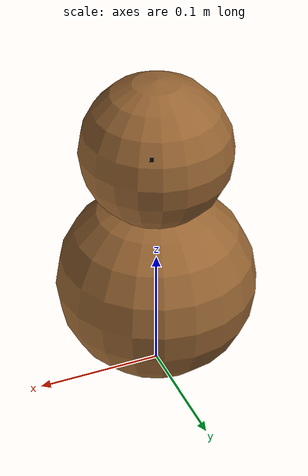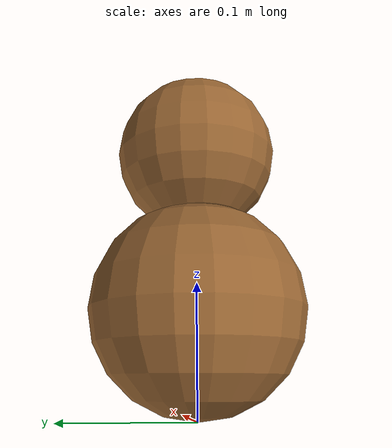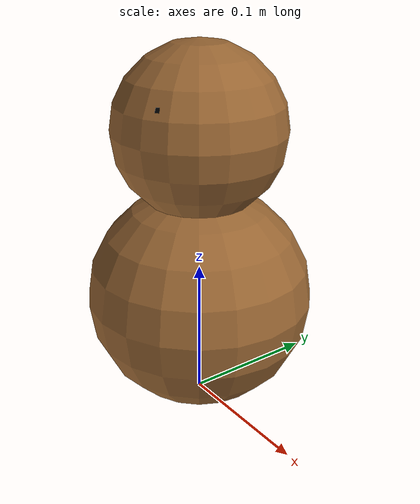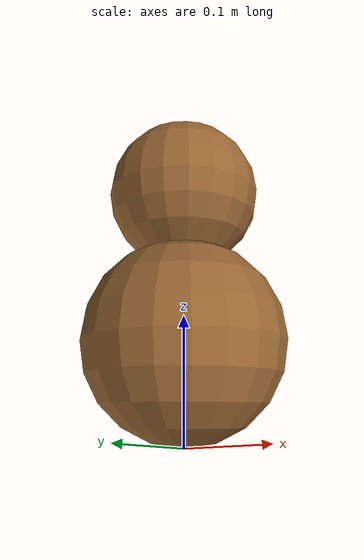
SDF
<?xml version="1.0" ?>
<sdf version="1.6">
  <model name="teddy_bear">
    <static>true</static>
    <link name="link">
      <collision name="collision_body">
        <pose>0 0 0.08 0 0 0</pose>
        <geometry>
          <sphere>
            <radius>0.08</radius>
          </sphere>
        </geometry>
      </collision>
      <visual name="visual_body">
        <pose>0 0 0.08 0 0 0</pose>
        <geometry>
          <sphere>
            <radius>0.08</radius>
          </sphere>
        </geometry>
        <material>
          <ambient>0.6 0.4 0.2 1</ambient>
          <diffuse>0.6 0.4 0.2 1</diffuse>
        </material>
      </visual>
      <collision name="collision_head">
        <pose>0 0 0.2 0 0 0</pose>
        <geometry>
          <sphere>
            <radius>0.06</radius>
          </sphere>
        </geometry>
      </collision>
      <visual name="visual_head">
        <pose>0 0 0.2 0 0 0</pose>
        <geometry>
          <sphere>
            <radius>0.06</radius>
          </sphere>
        </geometry>
        <material>
          <ambient>0.6 0.4 0.2 1</ambient>
          <diffuse>0.6 0.4 0.2 1</diffuse>
        </material>
      </visual>
      <visual name="visual_eye_left">
        <pose>0.02 -0.04 0.22 0 0 0</pose>
        <geometry>
          <sphere>
            <radius>0.01</radius>
          </sphere>
        </geometry>
        <material>
          <ambient>0 0 0 1</ambient>
          <diffuse>0 0 0 1</diffuse>
        </material>
      </visual>
      <visual name="visual_eye_right">
        <pose>0.02 0.04 0.22 0 0 0</pose>
        <geometry>
          <sphere>
            <radius>0.01</radius>
          </sphere>
        </geometry>
        <material>
          <ambient>0 0 0 1</ambient>
          <diffuse>0 0 0 1</diffuse>
        </material>
      </visual>
      <visual name="visual_nose">
        <pose>0.045 0 0.18 0 0 0</pose>
        <geometry>
          <sphere>
            <radius>0.01</radius>
          </sphere>
        </geometry>
        <material>
          <ambient>0 0 0 1</ambient>
          <diffuse>0 0 0 1</diffuse>
        </material>
      </visual>
    </link>
  </model>
</sdf>
